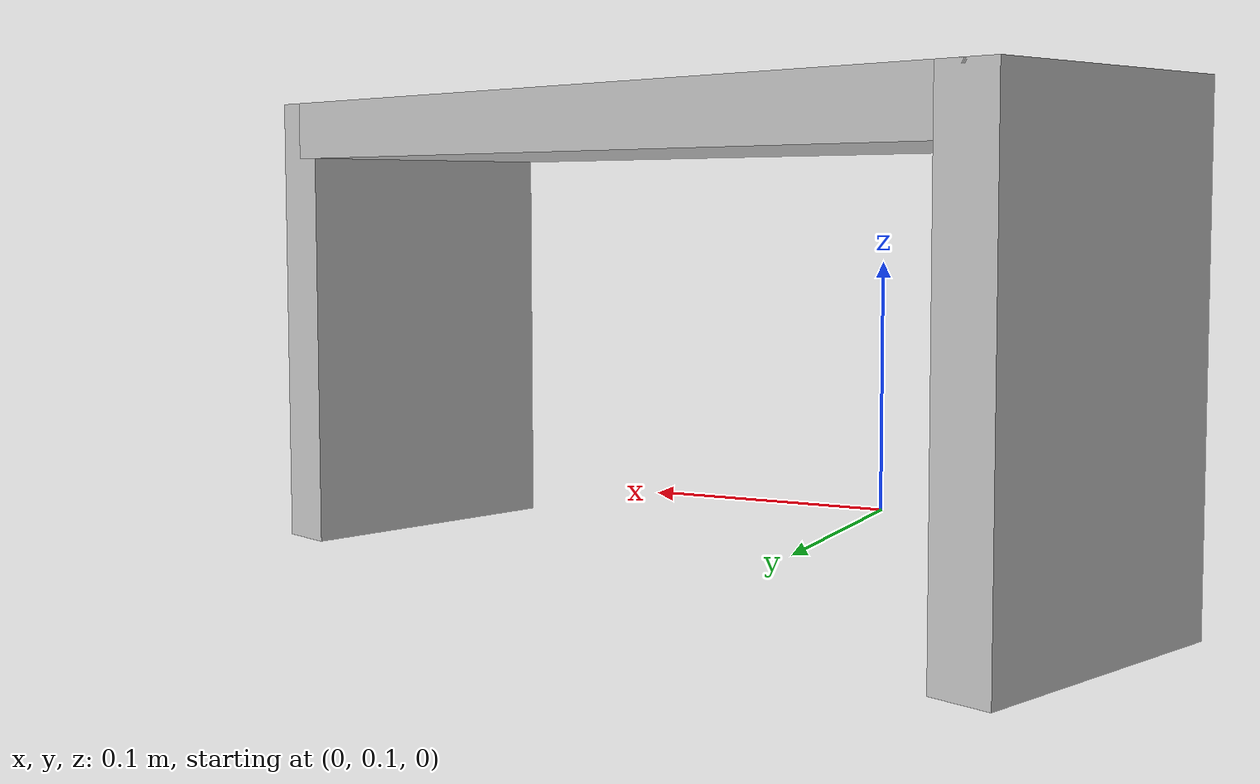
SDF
<?xml version="1.0" ?>
<sdf version="1.6">
  <model name="table">
    <static>true</static>

    <!-- Pose globale dell'oggetto (equivalente a collision_objects[0].pose) -->
    <pose>0 0.205 0 0 0 1.2</pose>

    <link name="link">
      <!-- Collision semplificata (una sola box) -->
      <collision name="collision">
        <pose>0.05 0.0 0.08 0 0 0</pose>
        <geometry>
          <box>
            <size>0.1 0.3 0.16</size>
          </box>
        </geometry>
      </collision>

      <!-- Piano superiore -->
      <visual name="top_visual">
        <pose>0.05 0.0 0.15 0 0 0</pose>
        <geometry>
          <box>
            <size>0.1 0.3 0.02</size>
          </box>
        </geometry>
      </visual>

      <!-- Gamba sinistra -->
      <visual name="leg_left_visual">
        <pose>0.05 -0.15 0.08 0 0 0</pose>
        <geometry>
          <box>
            <size>0.1 0.02 0.16</size>
          </box>
        </geometry>
      </visual>

      <!-- Gamba destra -->
      <visual name="leg_right_visual">
        <pose>0.05 0.15 0.08 0 0 0</pose>
        <geometry>
          <box>
            <size>0.1 0.02 0.16</size>
          </box>
        </geometry>
      </visual>

    </link>
  </model>
</sdf>
